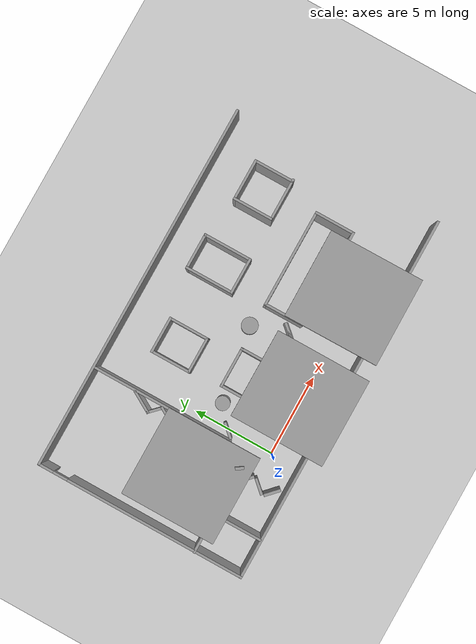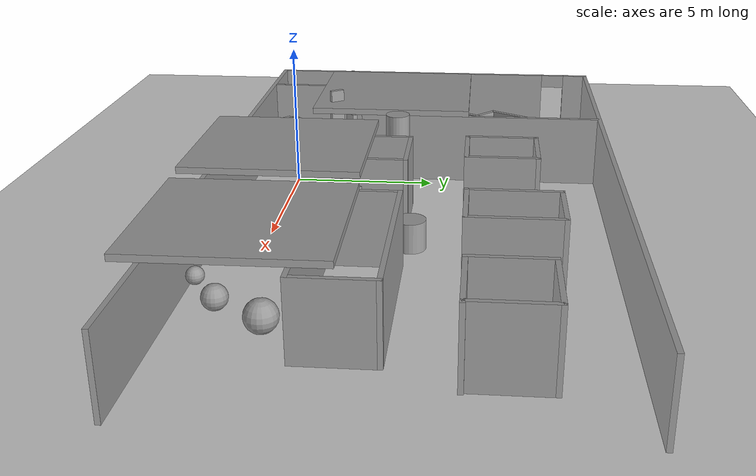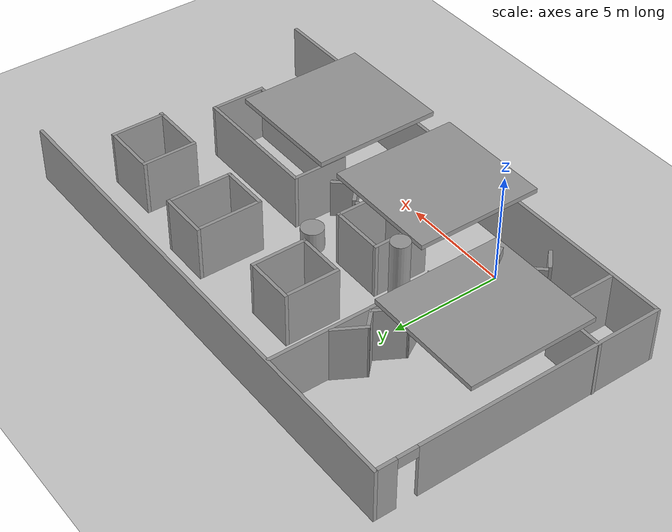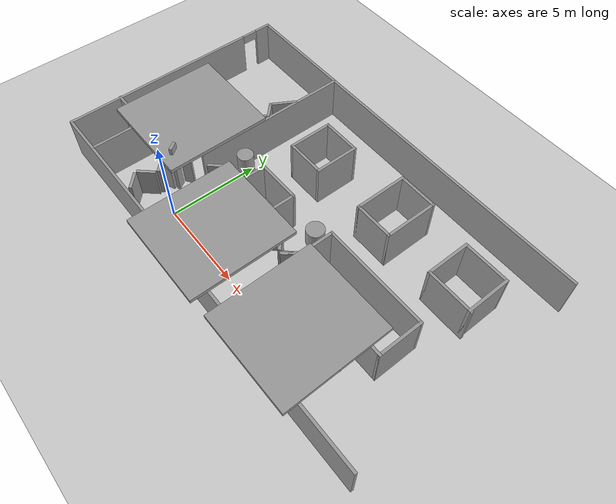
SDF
<sdf version="1.7">
 <world name="default">
  <light name="sun" type="directional">
   <pose>0 0 10 0 -0 0</pose>
   <diffuse>0.8 0.8 0.8 1</diffuse>
   <specular>0.2 0.2 0.2 1</specular>
   <attenuation>
    <range>1000</range>
    <constant>0.9</constant>
    <linear>0.01</linear>
    <quadratic>0.001</quadratic>
   </attenuation>
   <direction>-0.5 0.1 -0.9</direction>
   <spot><inner_angle>0</inner_angle><outer_angle>0</outer_angle><falloff>0</falloff></spot>
  </light>
  <model name="ground_plane">
   <static>1</static>
   <link name="link">
    <collision name="collision">
     <geometry><plane><normal>0 0 1</normal><size>100 100</size></plane></geometry>
     <surface>
      <contact><collide_bitmask>65535</collide_bitmask></contact>
      <friction><ode><mu>100</mu><mu2>50</mu2></ode></friction>
     </surface>
    </collision>
    <visual name="visual">
     <cast_shadows>0</cast_shadows>
     <geometry><plane><normal>0 0 1</normal><size>100 100</size></plane></geometry>
     <material>
      <script><uri>file://media/materials/scripts/gazebo.material</uri><name>Gazebo/Grey</name></script>
     </material>
    </visual>
   </link>
  </model>
  <gravity>0 0 -9.8</gravity>
  <magnetic_field>6e-06 2.3e-05 -4.2e-05</magnetic_field>
  <atmosphere type="adiabatic"/>
  <physics type="ode">
   <max_step_size>0.001</max_step_size>
   <real_time_factor>1</real_time_factor>
   <real_time_update_rate>1000</real_time_update_rate>
  </physics>
  <scene><ambient>0.4 0.4 0.4 1</ambient><background>0.7 0.7 0.7 1</background><shadows>1</shadows></scene>
  <spherical_coordinates>
   <surface_model>EARTH_WGS84</surface_model>
   <latitude_deg>0</latitude_deg>
   <longitude_deg>0</longitude_deg>
   <elevation>0</elevation>
   <heading_deg>0</heading_deg>
  </spherical_coordinates>
  <model name="office.world">
   <pose>4.59187 4.7119 0 0 -0 0</pose>
   <link name="Wall_11">
    <collision name="Wall_11_Collision">
     <geometry><box><size>22.75 0.15 2.5</size></box></geometry>
     <pose>0 0 1.25 0 -0 0</pose>
    </collision>
    <visual name="Wall_11_Visual">
     <pose>0 0 1.25 0 -0 0</pose>
     <geometry><box><size>22.75 0.15 2.5</size></box></geometry>
     <material>
      <script><uri>file://media/materials/scripts/gazebo.material</uri><name>Gazebo/Grey</name></script>
      <ambient>1 1 1 1</ambient>
     </material>
     <meta><layer>0</layer></meta>
    </visual>
    <pose>0.015161 6.425 0 0 -0 3.14159</pose>
   </link>
   <link name="Wall_15">
    <collision name="Wall_15_Collision">
     <geometry><box><size>8.75 0.15 2.5</size></box></geometry>
     <pose>0 0 1.25 0 -0 0</pose>
    </collision>
    <visual name="Wall_15_Visual">
     <pose>0 0 1.25 0 -0 0</pose>
     <geometry><box><size>8.75 0.15 2.5</size></box></geometry>
     <material>
      <script><uri>file://media/materials/scripts/gazebo.material</uri><name>Gazebo/Grey</name></script>
      <ambient>1 1 1 1</ambient>
     </material>
     <meta><layer>0</layer></meta>
    </visual>
    <pose>-5.08854 2.04563 0 0 -0 -1.5708</pose>
   </link>
   <link name="Wall_17">
    <collision name="Wall_17_Collision">
     <geometry><box><size>2.5 0.15 2.5</size></box></geometry>
     <pose>0 0 1.25 0 -0 0</pose>
    </collision>
    <visual name="Wall_17_Visual">
     <pose>0 0 1.25 0 -0 0</pose>
     <geometry><box><size>2.5 0.15 2.5</size></box></geometry>
     <material>
      <script><uri>file://media/materials/scripts/gazebo.material</uri><name>Gazebo/Grey</name></script>
      <ambient>1 1 1 1</ambient>
     </material>
     <meta><layer>0</layer></meta>
    </visual>
    <pose>-2.75356 2.83565 0 0 -0 -1.5708</pose>
   </link>
   <link name="Wall_18">
    <collision name="Wall_18_Collision">
     <geometry><box><size>2.25 0.15 2.5</size></box></geometry>
     <pose>0 0 1.25 0 -0 0</pose>
    </collision>
    <visual name="Wall_18_Visual">
     <pose>0 0 1.25 0 -0 0</pose>
     <geometry><box><size>2.25 0.15 2.5</size></box></geometry>
     <material>
      <script><uri>file://media/materials/scripts/gazebo.material</uri><name>Gazebo/Grey</name></script>
      <ambient>1 1 1 1</ambient>
     </material>
     <meta><layer>0</layer></meta>
    </visual>
    <pose>-1.70356 1.66065 0 0 -0 0</pose>
   </link>
   <link name="Wall_19">
    <collision name="Wall_19_Collision">
     <geometry><box><size>2.5 0.15 2.5</size></box></geometry>
     <pose>0 0 1.25 0 -0 0</pose>
    </collision>
    <visual name="Wall_19_Visual">
     <pose>0 0 1.25 0 -0 0</pose>
     <geometry><box><size>2.5 0.15 2.5</size></box></geometry>
     <material>
      <script><uri>file://media/materials/scripts/gazebo.material</uri><name>Gazebo/Grey</name></script>
      <ambient>1 1 1 1</ambient>
     </material>
     <meta><layer>0</layer></meta>
    </visual>
    <pose>-0.653558 2.83565 0 0 -0 1.5708</pose>
   </link>
   <link name="Wall_20">
    <collision name="Wall_20_Collision">
     <geometry><box><size>2.25 0.15 2.5</size></box></geometry>
     <pose>0 0 1.25 0 -0 0</pose>
    </collision>
    <visual name="Wall_20_Visual">
     <pose>0 0 1.25 0 -0 0</pose>
     <geometry><box><size>2.25 0.15 2.5</size></box></geometry>
     <material>
      <script><uri>file://media/materials/scripts/gazebo.material</uri><name>Gazebo/Grey</name></script>
      <ambient>1 1 1 1</ambient>
     </material>
     <meta><layer>0</layer></meta>
    </visual>
    <pose>-1.70356 4.01065 0 0 -0 3.14159</pose>
   </link>
   <link name="Wall_22">
    <collision name="Wall_22_Collision">
     <geometry><box><size>3 0.15 2.5</size></box></geometry>
     <pose>0 0 1.25 0 -0 0</pose>
    </collision>
    <visual name="Wall_22_Visual">
     <pose>0 0 1.25 0 -0 0</pose>
     <geometry><box><size>3 0.15 2.5</size></box></geometry>
     <material>
      <script><uri>file://media/materials/scripts/gazebo.material</uri><name>Gazebo/Grey</name></script>
      <ambient>1 1 1 1</ambient>
     </material>
     <meta><layer>0</layer></meta>
    </visual>
    <pose>2.27019 3.1611 0 0 -0 -1.5708</pose>
   </link>
   <link name="Wall_23">
    <collision name="Wall_23_Collision">
     <geometry><box><size>2.25 0.15 2.5</size></box></geometry>
     <pose>0 0 1.25 0 -0 0</pose>
    </collision>
    <visual name="Wall_23_Visual">
     <pose>0 0 1.25 0 -0 0</pose>
     <geometry><box><size>2.25 0.15 2.5</size></box></geometry>
     <material>
      <script><uri>file://media/materials/scripts/gazebo.material</uri><name>Gazebo/Grey</name></script>
      <ambient>1 1 1 1</ambient>
     </material>
     <meta><layer>0</layer></meta>
    </visual>
    <pose>3.32019 1.7361 0 0 -0 0</pose>
   </link>
   <link name="Wall_24">
    <collision name="Wall_24_Collision">
     <geometry><box><size>3 0.15 2.5</size></box></geometry>
     <pose>0 0 1.25 0 -0 0</pose>
    </collision>
    <visual name="Wall_24_Visual">
     <pose>0 0 1.25 0 -0 0</pose>
     <geometry><box><size>3 0.15 2.5</size></box></geometry>
     <material>
      <script><uri>file://media/materials/scripts/gazebo.material</uri><name>Gazebo/Grey</name></script>
      <ambient>1 1 1 1</ambient>
     </material>
     <meta><layer>0</layer></meta>
    </visual>
    <pose>4.37019 3.1611 0 0 -0 1.5708</pose>
   </link>
   <link name="Wall_25">
    <collision name="Wall_25_Collision">
     <geometry><box><size>2.25 0.15 2.5</size></box></geometry>
     <pose>0 0 1.25 0 -0 0</pose>
    </collision>
    <visual name="Wall_25_Visual">
     <pose>0 0 1.25 0 -0 0</pose>
     <geometry><box><size>2.25 0.15 2.5</size></box></geometry>
     <material>
      <script><uri>file://media/materials/scripts/gazebo.material</uri><name>Gazebo/Grey</name></script>
      <ambient>1 1 1 1</ambient>
     </material>
     <meta><layer>0</layer></meta>
    </visual>
    <pose>3.32019 4.5861 0 0 -0 3.14159</pose>
   </link>
   <link name="Wall_27">
    <collision name="Wall_27_Collision">
     <geometry><box><size>2.5 0.15 2.5</size></box></geometry>
     <pose>0 0 1.25 0 -0 0</pose>
    </collision>
    <visual name="Wall_27_Visual">
     <pose>0 0 1.25 0 -0 0</pose>
     <geometry><box><size>2.5 0.15 2.5</size></box></geometry>
     <material>
      <script><uri>file://media/materials/scripts/gazebo.material</uri><name>Gazebo/Grey</name></script>
      <ambient>1 1 1 1</ambient>
     </material>
     <meta><layer>0</layer></meta>
    </visual>
    <pose>6.94016 2.97716 0 0 -0 -1.5708</pose>
   </link>
   <link name="Wall_28">
    <collision name="Wall_28_Collision">
     <geometry><box><size>2.64151 0.15 2.5</size></box></geometry>
     <pose>0 0 1.25 0 -0 0</pose>
    </collision>
    <visual name="Wall_28_Visual">
     <pose>0 0 1.25 0 -0 0</pose>
     <geometry><box><size>2.64151 0.15 2.5</size></box></geometry>
     <material>
      <script><uri>file://media/materials/scripts/gazebo.material</uri><name>Gazebo/Grey</name></script>
      <ambient>1 1 1 1</ambient>
     </material>
     <meta><layer>0</layer></meta>
    </visual>
    <pose>8.18592 1.80216 0 0 -0 0</pose>
   </link>
   <link name="Wall_29">
    <collision name="Wall_29_Collision">
     <geometry><box><size>2.5 0.15 2.5</size></box></geometry>
     <pose>0 0 1.25 0 -0 0</pose>
    </collision>
    <visual name="Wall_29_Visual">
     <pose>0 0 1.25 0 -0 0</pose>
     <geometry><box><size>2.5 0.15 2.5</size></box></geometry>
     <material>
      <script><uri>file://media/materials/scripts/gazebo.material</uri><name>Gazebo/Grey</name></script>
      <ambient>1 1 1 1</ambient>
     </material>
     <meta><layer>0</layer></meta>
    </visual>
    <pose>9.36092 2.97716 0 0 -0 1.5708</pose>
   </link>
   <link name="Wall_30">
    <collision name="Wall_30_Collision">
     <geometry><box><size>2.57076 0.15 2.5</size></box></geometry>
     <pose>0 0 1.25 0 -0 0</pose>
    </collision>
    <visual name="Wall_30_Visual">
     <pose>0 0 1.25 0 -0 0</pose>
     <geometry><box><size>2.57076 0.15 2.5</size></box></geometry>
     <material>
      <script><uri>file://media/materials/scripts/gazebo.material</uri><name>Gazebo/Grey</name></script>
      <ambient>1 1 1 1</ambient>
     </material>
     <meta><layer>0</layer></meta>
    </visual>
    <pose>8.15054 4.15216 0 0 -0 3.14159</pose>
   </link>
   <link name="Wall_32">
    <collision name="Wall_32_Collision">
     <geometry><box><size>2.5 0.15 2.5</size></box></geometry>
     <pose>0 0 1.25 0 -0 0</pose>
    </collision>
    <visual name="Wall_32_Visual">
     <pose>0 0 1.25 0 -0 0</pose>
     <geometry><box><size>2.5 0.15 2.5</size></box></geometry>
     <material>
      <script><uri>file://media/materials/scripts/gazebo.material</uri><name>Gazebo/Grey</name></script>
      <ambient>1 1 1 1</ambient>
     </material>
     <meta><layer>0</layer></meta>
    </visual>
    <pose>-2.54129 -1.48053 0 0 -0 -1.5708</pose>
   </link>
   <link name="Wall_33">
    <collision name="Wall_33_Collision">
     <geometry><box><size>2.5 0.15 2.5</size></box></geometry>
     <pose>0 0 1.25 0 -0 0</pose>
    </collision>
    <visual name="Wall_33_Visual">
     <pose>0 0 1.25 0 -0 0</pose>
     <geometry><box><size>2.5 0.15 2.5</size></box></geometry>
     <material>
      <script><uri>file://media/materials/scripts/gazebo.material</uri><name>Gazebo/Grey</name></script>
      <ambient>1 1 1 1</ambient>
     </material>
     <meta><layer>0</layer></meta>
    </visual>
    <pose>-1.36629 -2.65553 0 0 -0 0</pose>
   </link>
   <link name="Wall_34">
    <collision name="Wall_34_Collision">
     <geometry><box><size>2.5 0.15 2.5</size></box></geometry>
     <pose>0 0 1.25 0 -0 0</pose>
    </collision>
    <visual name="Wall_34_Visual">
     <pose>0 0 1.25 0 -0 0</pose>
     <geometry><box><size>2.5 0.15 2.5</size></box></geometry>
     <material>
      <script><uri>file://media/materials/scripts/gazebo.material</uri><name>Gazebo/Grey</name></script>
      <ambient>1 1 1 1</ambient>
     </material>
     <meta><layer>0</layer></meta>
    </visual>
    <pose>-0.191286 -1.48053 0 0 -0 1.5708</pose>
   </link>
   <link name="Wall_35">
    <collision name="Wall_35_Collision">
     <geometry><box><size>2.5 0.15 2.5</size></box></geometry>
     <pose>0 0 1.25 0 -0 0</pose>
    </collision>
    <visual name="Wall_35_Visual">
     <pose>0 0 1.25 0 -0 0</pose>
     <geometry><box><size>2.5 0.15 2.5</size></box></geometry>
     <material>
      <script><uri>file://media/materials/scripts/gazebo.material</uri><name>Gazebo/Grey</name></script>
      <ambient>1 1 1 1</ambient>
     </material>
     <meta><layer>0</layer></meta>
    </visual>
    <pose>-1.36629 -0.305535 0 0 -0 3.14159</pose>
   </link>
   <link name="Wall_37">
    <collision name="Wall_37_Collision">
     <geometry><box><size>2.5 0.15 2.5</size></box></geometry>
     <pose>0 0 1.25 0 -0 0</pose>
    </collision>
    <visual name="Wall_37_Visual">
     <pose>0 0 1.25 0 -0 0</pose>
     <geometry><box><size>2.5 0.15 2.5</size></box></geometry>
     <material>
      <script><uri>file://media/materials/scripts/gazebo.material</uri><name>Gazebo/Grey</name></script>
      <ambient>1 1 1 1</ambient>
     </material>
     <meta><layer>0</layer></meta>
    </visual>
    <pose>2.62398 -1.40978 0 0 -0 -1.5708</pose>
   </link>
   <link name="Wall_38">
    <collision name="Wall_38_Collision">
     <geometry><box><size>6 0.15 2.5</size></box></geometry>
     <pose>0 0 1.25 0 -0 0</pose>
    </collision>
    <visual name="Wall_38_Visual">
     <pose>0 0 1.25 0 -0 0</pose>
     <geometry><box><size>6 0.15 2.5</size></box></geometry>
     <material>
      <script><uri>file://media/materials/scripts/gazebo.material</uri><name>Gazebo/Grey</name></script>
      <ambient>1 1 1 1</ambient>
     </material>
     <meta><layer>0</layer></meta>
    </visual>
    <pose>5.54898 -2.58478 0 0 -0 0</pose>
   </link>
   <link name="Wall_39">
    <collision name="Wall_39_Collision">
     <geometry><box><size>2.5 0.15 2.5</size></box></geometry>
     <pose>0 0 1.25 0 -0 0</pose>
    </collision>
    <visual name="Wall_39_Visual">
     <pose>0 0 1.25 0 -0 0</pose>
     <geometry><box><size>2.5 0.15 2.5</size></box></geometry>
     <material>
      <script><uri>file://media/materials/scripts/gazebo.material</uri><name>Gazebo/Grey</name></script>
      <ambient>1 1 1 1</ambient>
     </material>
     <meta><layer>0</layer></meta>
    </visual>
    <pose>8.47398 -1.40978 0 0 -0 1.5708</pose>
   </link>
   <link name="Wall_40">
    <collision name="Wall_40_Collision">
     <geometry><box><size>6 0.15 2.5</size></box></geometry>
     <pose>0 0 1.25 0 -0 0</pose>
    </collision>
    <visual name="Wall_40_Visual">
     <pose>0 0 1.25 0 -0 0</pose>
     <geometry><box><size>6 0.15 2.5</size></box></geometry>
     <material>
      <script><uri>file://media/materials/scripts/gazebo.material</uri><name>Gazebo/Grey</name></script>
      <ambient>1 1 1 1</ambient>
     </material>
     <meta><layer>0</layer></meta>
    </visual>
    <pose>5.54898 -0.234777 0 0 -0 3.14159</pose>
   </link>
   <link name="Wall_42">
    <collision name="Wall_42_Collision">
     <geometry><box><size>1.5 0.15 2.5</size></box></geometry>
     <pose>0 0 1.25 0 -0 0</pose>
    </collision>
    <visual name="Wall_42_Visual">
     <pose>0 0 1.25 0 -0 0</pose>
     <geometry><box><size>1.5 0.15 2.5</size></box></geometry>
     <material>
      <script><uri>file://media/materials/scripts/gazebo.material</uri><name>Gazebo/Grey</name></script>
      <ambient>1 1 1 1</ambient>
     </material>
     <meta><layer>0</layer></meta>
    </visual>
    <pose>-5.4968 3.14305 0 0 -0 -2.0944</pose>
   </link>
   <link name="Wall_43">
    <collision name="Wall_43_Collision">
     <geometry><box><size>1 0.15 2.5</size></box></geometry>
     <pose>0 0 1.25 0 -0 0</pose>
    </collision>
    <visual name="Wall_43_Visual">
     <pose>0 0 1.25 0 -0 0</pose>
     <geometry><box><size>1 0.15 2.5</size></box></geometry>
     <material>
      <script><uri>file://media/materials/scripts/gazebo.material</uri><name>Gazebo/Grey</name></script>
      <ambient>1 1 1 1</ambient>
     </material>
     <meta><layer>0</layer></meta>
    </visual>
    <pose>-5.53378 2.25796 0 0 -0 -0.785398</pose>
   </link>
   <link name="Wall_44">
    <collision name="Wall_44_Collision">
     <geometry><box><size>1.5 0.15 2.5</size></box></geometry>
     <pose>0 0 1.25 0 -0 0</pose>
    </collision>
    <visual name="Wall_44_Visual">
     <pose>0 0 1.25 0 -0 0</pose>
     <geometry><box><size>1.5 0.15 2.5</size></box></geometry>
     <material>
      <script><uri>file://media/materials/scripts/gazebo.material</uri><name>Gazebo/Grey</name></script>
      <ambient>1 1 1 1</ambient>
     </material>
     <meta><layer>0</layer></meta>
    </visual>
    <pose>-5.57076 1.37288 0 0 -0 -2.0944</pose>
   </link>
   <link name="Wall_45">
    <collision name="Wall_45_Collision">
     <geometry><box><size>1.5 0.15 2.5</size></box></geometry>
     <pose>0 0 1.25 0 -0 0</pose>
    </collision>
    <visual name="Wall_45_Visual">
     <pose>0 0 1.25 0 -0 0</pose>
     <geometry><box><size>1.5 0.15 2.5</size></box></geometry>
     <material>
      <script><uri>file://media/materials/scripts/gazebo.material</uri><name>Gazebo/Grey</name></script>
      <ambient>1 1 1 1</ambient>
     </material>
     <meta><layer>0</layer></meta>
    </visual>
    <pose>-5.57076 0.203741 0 0 -0 -1.0472</pose>
   </link>
   <link name="Wall_47">
    <collision name="Wall_47_Collision">
     <geometry><box><size>2.5 0.15 2.5</size></box></geometry>
     <pose>0 0 1.25 0 -0 0</pose>
    </collision>
    <visual name="Wall_47_Visual">
     <pose>0 0 1.25 0 -0 0</pose>
     <geometry><box><size>2.5 0.15 2.5</size></box></geometry>
     <material>
      <script><uri>file://media/materials/scripts/gazebo.material</uri><name>Gazebo/Grey</name></script>
      <ambient>1 1 1 1</ambient>
     </material>
     <meta><layer>0</layer></meta>
    </visual>
    <pose>-10.1402 -3.4896 0 0 -0 0</pose>
   </link>
   <link name="Wall_48">
    <collision name="Wall_48_Collision">
     <geometry><box><size>3 0.15 2.5</size></box></geometry>
     <pose>0 0 1.25 0 -0 0</pose>
    </collision>
    <visual name="Wall_48_Visual">
     <pose>0 0 1.25 0 -0 0</pose>
     <geometry><box><size>3 0.15 2.5</size></box></geometry>
     <material>
      <script><uri>file://media/materials/scripts/gazebo.material</uri><name>Gazebo/Grey</name></script>
      <ambient>1 1 1 1</ambient>
     </material>
     <meta><layer>0</layer></meta>
    </visual>
    <pose>-8.96516 -4.9146 0 0 -0 -1.5708</pose>
   </link>
   <link name="Wall_8">
    <pose>-11.2848 -0 0 0 -0 -1.5708</pose>
    <visual name="Wall_8_Visual_0">
     <pose>-6.011 0 1.25 0 -0 0</pose>
     <geometry><box><size>0.977998 0.15 2.5</size></box></geometry>
     <material>
      <script><uri>file://media/materials/scripts/gazebo.material</uri><name>Gazebo/Grey</name></script>
      <ambient>1 1 1 1</ambient>
     </material>
     <meta><layer>0</layer></meta>
    </visual>
    <collision name="Wall_8_Collision_0">
     <geometry><box><size>0.977998 0.15 2.5</size></box></geometry>
     <pose>-6.011 0 1.25 0 -0 0</pose>
    </collision>
    <visual name="Wall_8_Visual_1">
     <pose>0.938999 0 1.25 0 -0 0</pose>
     <geometry><box><size>11.122 0.15 2.5</size></box></geometry>
     <material>
      <script><uri>file://media/materials/scripts/gazebo.material</uri><name>Gazebo/Grey</name></script>
      <ambient>1 1 1 1</ambient>
     </material>
     <meta><layer>0</layer></meta>
    </visual>
    <collision name="Wall_8_Collision_1">
     <geometry><box><size>11.122 0.15 2.5</size></box></geometry>
     <pose>0.938999 0 1.25 0 -0 0</pose>
    </collision>
    <visual name="Wall_8_Visual_2">
     <pose>-5.072 0 2.25 0 -0 0</pose>
     <geometry><box><size>0.9 0.15 0.5</size></box></geometry>
     <material>
      <script><uri>file://media/materials/scripts/gazebo.material</uri><name>Gazebo/Grey</name></script>
      <ambient>1 1 1 1</ambient>
     </material>
     <meta><layer>0</layer></meta>
    </visual>
    <collision name="Wall_8_Collision_2">
     <geometry><box><size>0.9 0.15 0.5</size></box></geometry>
     <pose>-5.072 0 2.25 0 -0 0</pose>
    </collision>
   </link>
   <link name="Wall_9">
    <collision name="Wall_9_Collision">
     <geometry><box><size>22.75 0.15 2.5</size></box></geometry>
     <pose>0 0 1.25 0 -0 0</pose>
    </collision>
    <visual name="Wall_9_Visual">
     <pose>0 0 1.25 0 -0 0</pose>
     <geometry><box><size>22.75 0.15 2.5</size></box></geometry>
     <material>
      <script><uri>file://media/materials/scripts/gazebo.material</uri><name>Gazebo/Grey</name></script>
      <ambient>1 1 1 1</ambient>
     </material>
     <meta><layer>0</layer></meta>
    </visual>
    <pose>0.015161 -6.425 0 0 -0 0</pose>
   </link>
   <static>1</static>
  </model>
  <model name="unit_cylinder_0">
   <pose>5.80131 4.676 0.499997 3e-06 1e-06 -0</pose>
   <link name="link">
    <inertial>
     <mass>1</mass>
     <inertia><ixx>0.145833</ixx><ixy>0</ixy><ixz>0</ixz><iyy>0.145833</iyy><iyz>0</iyz><izz>0.125</izz></inertia>
    </inertial>
    <collision name="collision">
     <geometry><cylinder><radius>0.5</radius><length>1</length></cylinder></geometry>
    </collision>
    <visual name="visual">
     <geometry><cylinder><radius>0.5</radius><length>1</length></cylinder></geometry>
     <material>
      <script><name>Gazebo/Grey</name><uri>file://media/materials/scripts/gazebo.material</uri></script>
     </material>
    </visual>
   </link>
  </model>
  <model name="unit_sphere">
   <pose>11.515 1.10677 0.5 0 -0 0</pose>
   <link name="link">
    <inertial>
     <mass>1</mass>
     <inertia><ixx>0.1</ixx><ixy>0</ixy><ixz>0</ixz><iyy>0.1</iyy><iyz>0</iyz><izz>0.1</izz></inertia>
    </inertial>
    <collision name="collision"><geometry><sphere><radius>0.5</radius></sphere></geometry></collision>
    <visual name="visual">
     <geometry><sphere><radius>0.5</radius></sphere></geometry>
     <material>
      <script><name>Gazebo/Grey</name><uri>file://media/materials/scripts/gazebo.material</uri></script>
     </material>
    </visual>
   </link>
  </model>
  <model name="unit_cylinder">
   <link name="link">
    <inertial>
     <mass>2.12958</mass>
     <inertia><ixx>1.74509</ixx><ixy>0</ixy><ixz>0</ixz><iyy>1.74509</iyy><iyz>0</iyz><izz>0.185715</izz></inertia>
    </inertial>
    <pose>0.182221 0.988908 0.5707 0 -0 0</pose>
    <visual name="visual">
     <geometry><cylinder><radius>0.417629</radius><length>3.05125</length></cylinder></geometry>
     <material>
      <script><name>Gazebo/Grey</name><uri>file://media/materials/scripts/gazebo.material</uri></script>
      <shader type="pixel"/>
     </material>
    </visual>
    <collision name="collision">
     <geometry><cylinder><radius>0.417629</radius><length>3.05125</length></cylinder></geometry>
     <surface>
      <friction>
       <ode><mu>1</mu><mu2>1</mu2><fdir1>0 0 0</fdir1><slip1>0</slip1><slip2>0</slip2></ode>
       <torsional>
        <coefficient>1</coefficient>
        <patch_radius>0</patch_radius>
        <surface_radius>0</surface_radius>
        <use_patch_radius>1</use_patch_radius>
        <ode><slip>0</slip></ode>
       </torsional>
      </friction>
      <bounce><restitution_coefficient>0</restitution_coefficient><threshold>1e+06</threshold></bounce>
      <contact>
       <collide_without_contact>0</collide_without_contact>
       <collide_without_contact_bitmask>1</collide_without_contact_bitmask>
       <collide_bitmask>1</collide_bitmask>
       <ode>
        <soft_cfm>0</soft_cfm>
        <soft_erp>0.2</soft_erp>
        <kp>1e+13</kp>
        <kd>1</kd>
        <max_vel>0.01</max_vel>
        <min_depth>0</min_depth>
       </ode>
       <bullet>
        <split_impulse>1</split_impulse>
        <split_impulse_penetration_threshold>-0.01</split_impulse_penetration_threshold>
        <soft_cfm>0</soft_cfm>
        <soft_erp>0.2</soft_erp>
        <kp>1e+13</kp>
        <kd>1</kd>
       </bullet>
      </contact>
     </surface>
    </collision>
   </link>
   <link name="link_1_clone">
    <inertial>
     <mass>0.284362</mass>
     <inertia>
      <ixx>0.0934565</ixx>
      <ixy>0</ixy>
      <ixz>0</ixz>
      <iyy>0.0704112</iyy>
      <iyz>0</iyz>
      <izz>0.0243483</izz>
     </inertia>
    </inertial>
    <pose>3.8361 -0.261391 1e-05 0 -1e-05 -0.722721</pose>
    <visual name="visual">
     <geometry><box><size>0.165809 1 1.71576</size></box></geometry>
     <material>
      <lighting>1</lighting>
      <script><uri>file://media/materials/scripts/gazebo.material</uri><name>Gazebo/Grey</name></script>
      <shader type="pixel"/>
     </material>
    </visual>
    <collision name="collision">
     <geometry><box><size>0.165809 1 1.71576</size></box></geometry>
     <surface>
      <friction>
       <ode><mu>1</mu><mu2>1</mu2><fdir1>0 0 0</fdir1><slip1>0</slip1><slip2>0</slip2></ode>
       <torsional>
        <coefficient>1</coefficient>
        <patch_radius>0</patch_radius>
        <surface_radius>0</surface_radius>
        <use_patch_radius>1</use_patch_radius>
        <ode><slip>0</slip></ode>
       </torsional>
      </friction>
      <bounce><restitution_coefficient>0</restitution_coefficient><threshold>1e+06</threshold></bounce>
      <contact>
       <collide_without_contact>0</collide_without_contact>
       <collide_without_contact_bitmask>1</collide_without_contact_bitmask>
       <collide_bitmask>1</collide_bitmask>
       <ode>
        <soft_cfm>0</soft_cfm>
        <soft_erp>0.2</soft_erp>
        <kp>1e+13</kp>
        <kd>1</kd>
        <max_vel>0.01</max_vel>
        <min_depth>0</min_depth>
       </ode>
       <bullet>
        <split_impulse>1</split_impulse>
        <split_impulse_penetration_threshold>-0.01</split_impulse_penetration_threshold>
        <soft_cfm>0</soft_cfm>
        <soft_erp>0.2</soft_erp>
        <kp>1e+13</kp>
        <kd>1</kd>
       </bullet>
      </contact>
     </surface>
    </collision>
   </link>
   <link name="link_1_clone_clone">
    <inertial>
     <mass>0.284362</mass>
     <inertia>
      <ixx>0.0934565</ixx>
      <ixy>0</ixy>
      <ixz>0</ixz>
      <iyy>0.0704112</iyy>
      <iyz>0</iyz>
      <izz>0.0243483</izz>
     </inertia>
    </inertial>
    <pose>4.66829 -0.290195 2.8e-05 -1.5e-05 -1e-06 0.806998</pose>
    <visual name="visual">
     <geometry><box><size>0.165809 1 1.71576</size></box></geometry>
     <material>
      <lighting>1</lighting>
      <script><uri>file://media/materials/scripts/gazebo.material</uri><name>Gazebo/Grey</name></script>
      <shader type="pixel"/>
     </material>
    </visual>
    <collision name="collision">
     <geometry><box><size>0.165809 1 1.71576</size></box></geometry>
     <surface>
      <friction>
       <ode><mu>1</mu><mu2>1</mu2><fdir1>0 0 0</fdir1><slip1>0</slip1><slip2>0</slip2></ode>
       <torsional>
        <coefficient>1</coefficient>
        <patch_radius>0</patch_radius>
        <surface_radius>0</surface_radius>
        <use_patch_radius>1</use_patch_radius>
        <ode><slip>0</slip></ode>
       </torsional>
      </friction>
      <bounce><restitution_coefficient>0</restitution_coefficient><threshold>1e+06</threshold></bounce>
      <contact>
       <collide_without_contact>0</collide_without_contact>
       <collide_without_contact_bitmask>1</collide_without_contact_bitmask>
       <collide_bitmask>1</collide_bitmask>
       <ode>
        <soft_cfm>0</soft_cfm>
        <soft_erp>0.2</soft_erp>
        <kp>1e+13</kp>
        <kd>1</kd>
        <max_vel>0.01</max_vel>
        <min_depth>0</min_depth>
       </ode>
       <bullet>
        <split_impulse>1</split_impulse>
        <split_impulse_penetration_threshold>-0.01</split_impulse_penetration_threshold>
        <soft_cfm>0</soft_cfm>
        <soft_erp>0.2</soft_erp>
        <kp>1e+13</kp>
        <kd>1</kd>
       </bullet>
      </contact>
     </surface>
    </collision>
   </link>
   <link name="link_1_clone_clone_0">
    <inertial>
     <mass>0.284362</mass>
     <inertia>
      <ixx>0.0934565</ixx>
      <ixy>0</ixy>
      <ixz>0</ixz>
      <iyy>0.0704112</iyy>
      <iyz>0</iyz>
      <izz>0.0243483</izz>
     </inertia>
    </inertial>
    <pose>5.50905 -0.333409 3.1e-05 0 -1.5e-05 -0.722721</pose>
    <visual name="visual">
     <geometry><box><size>0.165809 1 1.71576</size></box></geometry>
     <material>
      <lighting>1</lighting>
      <script><uri>file://media/materials/scripts/gazebo.material</uri><name>Gazebo/Grey</name></script>
      <shader type="pixel"/>
     </material>
    </visual>
    <collision name="collision">
     <geometry><box><size>0.165809 1 1.71576</size></box></geometry>
     <surface>
      <friction>
       <ode><mu>1</mu><mu2>1</mu2><fdir1>0 0 0</fdir1><slip1>0</slip1><slip2>0</slip2></ode>
       <torsional>
        <coefficient>1</coefficient>
        <patch_radius>0</patch_radius>
        <surface_radius>0</surface_radius>
        <use_patch_radius>1</use_patch_radius>
        <ode><slip>0</slip></ode>
       </torsional>
      </friction>
      <bounce><restitution_coefficient>0</restitution_coefficient><threshold>1e+06</threshold></bounce>
      <contact>
       <collide_without_contact>0</collide_without_contact>
       <collide_without_contact_bitmask>1</collide_without_contact_bitmask>
       <collide_bitmask>1</collide_bitmask>
       <ode>
        <soft_cfm>0</soft_cfm>
        <soft_erp>0.2</soft_erp>
        <kp>1e+13</kp>
        <kd>1</kd>
        <max_vel>0.01</max_vel>
        <min_depth>0</min_depth>
       </ode>
       <bullet>
        <split_impulse>1</split_impulse>
        <split_impulse_penetration_threshold>-0.01</split_impulse_penetration_threshold>
        <soft_cfm>0</soft_cfm>
        <soft_erp>0.2</soft_erp>
        <kp>1e+13</kp>
        <kd>1</kd>
       </bullet>
      </contact>
     </surface>
    </collision>
   </link>
   <link name="link_1_clone_clone_1">
    <inertial>
     <mass>0.284362</mass>
     <inertia>
      <ixx>0.0934565</ixx>
      <ixy>0</ixy>
      <ixz>0</ixz>
      <iyy>0.0704112</iyy>
      <iyz>0</iyz>
      <izz>0.0243483</izz>
     </inertia>
    </inertial>
    <pose>5.50877 -0.269126 3.1e-05 0 -1.5e-05 -0.722721</pose>
    <visual name="visual">
     <geometry><box><size>0.165809 1 1.71576</size></box></geometry>
     <material>
      <lighting>1</lighting>
      <script><uri>file://media/materials/scripts/gazebo.material</uri><name>Gazebo/Grey</name></script>
      <shader type="pixel"/>
     </material>
    </visual>
    <collision name="collision">
     <geometry><box><size>0.165809 1 1.71576</size></box></geometry>
     <surface>
      <friction>
       <ode><mu>1</mu><mu2>1</mu2><fdir1>0 0 0</fdir1><slip1>0</slip1><slip2>0</slip2></ode>
       <torsional>
        <coefficient>1</coefficient>
        <patch_radius>0</patch_radius>
        <surface_radius>0</surface_radius>
        <use_patch_radius>1</use_patch_radius>
        <ode><slip>0</slip></ode>
       </torsional>
      </friction>
      <bounce><restitution_coefficient>0</restitution_coefficient><threshold>1e+06</threshold></bounce>
      <contact>
       <collide_without_contact>0</collide_without_contact>
       <collide_without_contact_bitmask>1</collide_without_contact_bitmask>
       <collide_bitmask>1</collide_bitmask>
       <ode>
        <soft_cfm>0</soft_cfm>
        <soft_erp>0.2</soft_erp>
        <kp>1e+13</kp>
        <kd>1</kd>
        <max_vel>0.01</max_vel>
        <min_depth>0</min_depth>
       </ode>
       <bullet>
        <split_impulse>1</split_impulse>
        <split_impulse_penetration_threshold>-0.01</split_impulse_penetration_threshold>
        <soft_cfm>0</soft_cfm>
        <soft_erp>0.2</soft_erp>
        <kp>1e+13</kp>
        <kd>1</kd>
       </bullet>
      </contact>
     </surface>
    </collision>
   </link>
   <link name="link_1_clone_clone_2">
    <inertial>
     <mass>0.284362</mass>
     <inertia>
      <ixx>0.0934565</ixx>
      <ixy>0</ixy>
      <ixz>0</ixz>
      <iyy>0.0704112</iyy>
      <iyz>0</iyz>
      <izz>0.0243483</izz>
     </inertia>
    </inertial>
    <pose>-1.05813 -0.017326 6e-06 0 -1.5e-05 -0.722721</pose>
    <visual name="visual">
     <geometry><box><size>0.165809 1 1.71576</size></box></geometry>
     <material>
      <lighting>1</lighting>
      <script><uri>file://media/materials/scripts/gazebo.material</uri><name>Gazebo/Grey</name></script>
      <shader type="pixel"/>
     </material>
    </visual>
    <collision name="collision">
     <geometry><box><size>0.165809 1 1.71576</size></box></geometry>
     <surface>
      <friction>
       <ode><mu>1</mu><mu2>1</mu2><fdir1>0 0 0</fdir1><slip1>0</slip1><slip2>0</slip2></ode>
       <torsional>
        <coefficient>1</coefficient>
        <patch_radius>0</patch_radius>
        <surface_radius>0</surface_radius>
        <use_patch_radius>1</use_patch_radius>
        <ode><slip>0</slip></ode>
       </torsional>
      </friction>
      <bounce><restitution_coefficient>0</restitution_coefficient><threshold>1e+06</threshold></bounce>
      <contact>
       <collide_without_contact>0</collide_without_contact>
       <collide_without_contact_bitmask>1</collide_without_contact_bitmask>
       <collide_bitmask>1</collide_bitmask>
       <ode>
        <soft_cfm>0</soft_cfm>
        <soft_erp>0.2</soft_erp>
        <kp>1e+13</kp>
        <kd>1</kd>
        <max_vel>0.01</max_vel>
        <min_depth>0</min_depth>
       </ode>
       <bullet>
        <split_impulse>1</split_impulse>
        <split_impulse_penetration_threshold>-0.01</split_impulse_penetration_threshold>
        <soft_cfm>0</soft_cfm>
        <soft_erp>0.2</soft_erp>
        <kp>1e+13</kp>
        <kd>1</kd>
       </bullet>
      </contact>
     </surface>
    </collision>
   </link>
   <link name="link_1_clone_clone_3">
    <inertial>
     <mass>0.284362</mass>
     <inertia>
      <ixx>0.0934565</ixx>
      <ixy>0</ixy>
      <ixz>0</ixz>
      <iyy>0.0704112</iyy>
      <iyz>0</iyz>
      <izz>0.0243483</izz>
     </inertia>
    </inertial>
    <pose>-2.88537 -3.89508 1.2e-05 -1.5e-05 -1e-06 0.811505</pose>
    <visual name="visual">
     <geometry><box><size>0.165809 1 1.71576</size></box></geometry>
     <material>
      <lighting>1</lighting>
      <script><uri>file://media/materials/scripts/gazebo.material</uri><name>Gazebo/Grey</name></script>
      <shader type="pixel"/>
     </material>
    </visual>
    <collision name="collision">
     <geometry><box><size>0.165809 1 1.71576</size></box></geometry>
     <surface>
      <friction>
       <ode><mu>1</mu><mu2>1</mu2><fdir1>0 0 0</fdir1><slip1>0</slip1><slip2>0</slip2></ode>
       <torsional>
        <coefficient>1</coefficient>
        <patch_radius>0</patch_radius>
        <surface_radius>0</surface_radius>
        <use_patch_radius>1</use_patch_radius>
        <ode><slip>0</slip></ode>
       </torsional>
      </friction>
      <bounce><restitution_coefficient>0</restitution_coefficient><threshold>1e+06</threshold></bounce>
      <contact>
       <collide_without_contact>0</collide_without_contact>
       <collide_without_contact_bitmask>1</collide_without_contact_bitmask>
       <collide_bitmask>1</collide_bitmask>
       <ode>
        <soft_cfm>0</soft_cfm>
        <soft_erp>0.2</soft_erp>
        <kp>1e+13</kp>
        <kd>1</kd>
        <max_vel>0.01</max_vel>
        <min_depth>0</min_depth>
       </ode>
       <bullet>
        <split_impulse>1</split_impulse>
        <split_impulse_penetration_threshold>-0.01</split_impulse_penetration_threshold>
        <soft_cfm>0</soft_cfm>
        <soft_erp>0.2</soft_erp>
        <kp>1e+13</kp>
        <kd>1</kd>
       </bullet>
      </contact>
     </surface>
    </collision>
   </link>
   <link name="link_1_clone_clone_4">
    <inertial>
     <mass>0.284362</mass>
     <inertia>
      <ixx>0.0934565</ixx>
      <ixy>0</ixy>
      <ixz>0</ixz>
      <iyy>0.0704112</iyy>
      <iyz>0</iyz>
      <izz>0.0243483</izz>
     </inertia>
    </inertial>
    <pose>-2.95182 -3.06999 9e-06 0 -1.5e-05 -0.735327</pose>
    <visual name="visual">
     <geometry><box><size>0.165809 1 1.71576</size></box></geometry>
     <material>
      <lighting>1</lighting>
      <script><uri>file://media/materials/scripts/gazebo.material</uri><name>Gazebo/Grey</name></script>
      <shader type="pixel"/>
     </material>
    </visual>
    <collision name="collision">
     <geometry><box><size>0.165809 1 1.71576</size></box></geometry>
     <surface>
      <friction>
       <ode><mu>1</mu><mu2>1</mu2><fdir1>0 0 0</fdir1><slip1>0</slip1><slip2>0</slip2></ode>
       <torsional>
        <coefficient>1</coefficient>
        <patch_radius>0</patch_radius>
        <surface_radius>0</surface_radius>
        <use_patch_radius>1</use_patch_radius>
        <ode><slip>0</slip></ode>
       </torsional>
      </friction>
      <bounce><restitution_coefficient>0</restitution_coefficient><threshold>1e+06</threshold></bounce>
      <contact>
       <collide_without_contact>0</collide_without_contact>
       <collide_without_contact_bitmask>1</collide_without_contact_bitmask>
       <collide_bitmask>1</collide_bitmask>
       <ode>
        <soft_cfm>0</soft_cfm>
        <soft_erp>0.2</soft_erp>
        <kp>1e+13</kp>
        <kd>1</kd>
        <max_vel>0.01</max_vel>
        <min_depth>0</min_depth>
       </ode>
       <bullet>
        <split_impulse>1</split_impulse>
        <split_impulse_penetration_threshold>-0.01</split_impulse_penetration_threshold>
        <soft_cfm>0</soft_cfm>
        <soft_erp>0.2</soft_erp>
        <kp>1e+13</kp>
        <kd>1</kd>
       </bullet>
      </contact>
     </surface>
    </collision>
   </link>
   <link name="link_1_clone_clone_5">
    <inertial>
     <mass>0.14369</mass>
     <inertia>
      <ixx>0.0383073</ixx>
      <ixy>0</ixy>
      <ixz>0</ixz>
      <iyy>0.035579</iyy>
      <iyz>0</iyz>
      <izz>0.00338669</izz>
     </inertia>
    </inertial>
    <pose>-2.7596 -2.40693 1.2e-05 -1.5e-05 -0 0.818386</pose>
    <visual name="visual">
     <geometry><box><size>0.165809 0.505313 1.71576</size></box></geometry>
     <material>
      <lighting>1</lighting>
      <script><uri>file://media/materials/scripts/gazebo.material</uri><name>Gazebo/Grey</name></script>
      <shader type="pixel"/>
     </material>
    </visual>
    <collision name="collision">
     <geometry><box><size>0.165809 0.505313 1.71576</size></box></geometry>
     <surface>
      <friction>
       <ode><mu>1</mu><mu2>1</mu2><fdir1>0 0 0</fdir1><slip1>0</slip1><slip2>0</slip2></ode>
       <torsional>
        <coefficient>1</coefficient>
        <patch_radius>0</patch_radius>
        <surface_radius>0</surface_radius>
        <use_patch_radius>1</use_patch_radius>
        <ode><slip>0</slip></ode>
       </torsional>
      </friction>
      <bounce><restitution_coefficient>0</restitution_coefficient><threshold>1e+06</threshold></bounce>
      <contact>
       <collide_without_contact>0</collide_without_contact>
       <collide_without_contact_bitmask>1</collide_without_contact_bitmask>
       <collide_bitmask>1</collide_bitmask>
       <ode>
        <soft_cfm>0</soft_cfm>
        <soft_erp>0.2</soft_erp>
        <kp>1e+13</kp>
        <kd>1</kd>
        <max_vel>0.01</max_vel>
        <min_depth>0</min_depth>
       </ode>
       <bullet>
        <split_impulse>1</split_impulse>
        <split_impulse_penetration_threshold>-0.01</split_impulse_penetration_threshold>
        <soft_cfm>0</soft_cfm>
        <soft_erp>0.2</soft_erp>
        <kp>1e+13</kp>
        <kd>1</kd>
       </bullet>
      </contact>
     </surface>
    </collision>
   </link>
   <link name="link_1_clone_clone_5_clone">
    <inertial>
     <mass>0.301889</mass>
     <inertia>
      <ixx>0.333329</ixx>
      <ixy>0</ixy>
      <ixz>0</ixz>
      <iyy>0.327597</iyy>
      <iyz>0</iyz>
      <izz>0.00711538</izz>
     </inertia>
    </inertial>
    <pose>-2.48468 -1.57033 0.368345 1.9e-05 5e-06 -2.55513</pose>
    <visual name="visual">
     <geometry><box><size>0.165809 0.505313 3.60477</size></box></geometry>
     <material>
      <lighting>1</lighting>
      <script><uri>file://media/materials/scripts/gazebo.material</uri><name>Gazebo/Grey</name></script>
      <shader type="pixel"/>
     </material>
    </visual>
    <collision name="collision">
     <geometry><box><size>0.165809 0.505313 3.60477</size></box></geometry>
     <surface>
      <friction>
       <ode><mu>1</mu><mu2>1</mu2><fdir1>0 0 0</fdir1><slip1>0</slip1><slip2>0</slip2></ode>
       <torsional>
        <coefficient>1</coefficient>
        <patch_radius>0</patch_radius>
        <surface_radius>0</surface_radius>
        <use_patch_radius>1</use_patch_radius>
        <ode><slip>0</slip></ode>
       </torsional>
      </friction>
      <bounce><restitution_coefficient>0</restitution_coefficient><threshold>1e+06</threshold></bounce>
      <contact>
       <collide_without_contact>0</collide_without_contact>
       <collide_without_contact_bitmask>1</collide_without_contact_bitmask>
       <collide_bitmask>1</collide_bitmask>
       <ode>
        <soft_cfm>0</soft_cfm>
        <soft_erp>0.2</soft_erp>
        <kp>1e+13</kp>
        <kd>1</kd>
        <max_vel>0.01</max_vel>
        <min_depth>0</min_depth>
       </ode>
       <bullet>
        <split_impulse>1</split_impulse>
        <split_impulse_penetration_threshold>-0.01</split_impulse_penetration_threshold>
        <soft_cfm>0</soft_cfm>
        <soft_erp>0.2</soft_erp>
        <kp>1e+13</kp>
        <kd>1</kd>
       </bullet>
      </contact>
     </surface>
    </collision>
   </link>
   <link name="link_1_clone_clone_5_clone_0">
    <inertial>
     <mass>0.14369</mass>
     <inertia>
      <ixx>0.0383073</ixx>
      <ixy>0</ixy>
      <ixz>0</ixz>
      <iyy>0.035579</iyy>
      <iyz>0</iyz>
      <izz>0.00338669</izz>
     </inertia>
    </inertial>
    <pose>-2.64111 -2.02293 2e-06 8e-06 -1.8e-05 -1.15169</pose>
    <visual name="visual">
     <geometry><box><size>0.165809 0.505313 1.71576</size></box></geometry>
     <material>
      <lighting>1</lighting>
      <script><uri>file://media/materials/scripts/gazebo.material</uri><name>Gazebo/Grey</name></script>
      <shader type="pixel"/>
     </material>
    </visual>
    <collision name="collision">
     <geometry><box><size>0.165809 0.505313 1.71576</size></box></geometry>
     <surface>
      <friction>
       <ode><mu>1</mu><mu2>1</mu2><fdir1>0 0 0</fdir1><slip1>0</slip1><slip2>0</slip2></ode>
       <torsional>
        <coefficient>1</coefficient>
        <patch_radius>0</patch_radius>
        <surface_radius>0</surface_radius>
        <use_patch_radius>1</use_patch_radius>
        <ode><slip>0</slip></ode>
       </torsional>
      </friction>
      <bounce><restitution_coefficient>0</restitution_coefficient><threshold>1e+06</threshold></bounce>
      <contact>
       <collide_without_contact>0</collide_without_contact>
       <collide_without_contact_bitmask>1</collide_without_contact_bitmask>
       <collide_bitmask>1</collide_bitmask>
       <ode>
        <soft_cfm>0</soft_cfm>
        <soft_erp>0.2</soft_erp>
        <kp>1e+13</kp>
        <kd>1</kd>
        <max_vel>0.01</max_vel>
        <min_depth>0</min_depth>
       </ode>
       <bullet>
        <split_impulse>1</split_impulse>
        <split_impulse_penetration_threshold>-0.01</split_impulse_penetration_threshold>
        <soft_cfm>0</soft_cfm>
        <soft_erp>0.2</soft_erp>
        <kp>1e+13</kp>
        <kd>1</kd>
       </bullet>
      </contact>
     </surface>
    </collision>
   </link>
   <link name="link_1_clone_clone_5_clone_1">
    <inertial>
     <mass>0.234046</mass>
     <inertia>
      <ixx>0.136236</ixx>
      <ixy>0</ixy>
      <ixz>0</ixz>
      <iyy>0.130957</iyy>
      <iyz>0</iyz>
      <izz>0.00635107</izz>
     </inertia>
    </inertial>
    <pose>-2.42444 -1.00595 -1e-06 4e-06 -1.9e-05 -0.952384</pose>
    <visual name="visual">
     <geometry><box><size>0.165809 0.546021 2.58591</size></box></geometry>
     <material>
      <lighting>1</lighting>
      <script><uri>file://media/materials/scripts/gazebo.material</uri><name>Gazebo/Grey</name></script>
      <shader type="pixel"/>
     </material>
    </visual>
    <collision name="collision">
     <geometry><box><size>0.165809 0.546021 2.58591</size></box></geometry>
     <surface>
      <friction>
       <ode><mu>1</mu><mu2>1</mu2><fdir1>0 0 0</fdir1><slip1>0</slip1><slip2>0</slip2></ode>
       <torsional>
        <coefficient>1</coefficient>
        <patch_radius>0</patch_radius>
        <surface_radius>0</surface_radius>
        <use_patch_radius>1</use_patch_radius>
        <ode><slip>0</slip></ode>
       </torsional>
      </friction>
      <bounce><restitution_coefficient>0</restitution_coefficient><threshold>1e+06</threshold></bounce>
      <contact>
       <collide_without_contact>0</collide_without_contact>
       <collide_without_contact_bitmask>1</collide_without_contact_bitmask>
       <collide_bitmask>1</collide_bitmask>
       <ode>
        <soft_cfm>0</soft_cfm>
        <soft_erp>0.2</soft_erp>
        <kp>1e+13</kp>
        <kd>1</kd>
        <max_vel>0.01</max_vel>
        <min_depth>0</min_depth>
       </ode>
       <bullet>
        <split_impulse>1</split_impulse>
        <split_impulse_penetration_threshold>-0.01</split_impulse_penetration_threshold>
        <soft_cfm>0</soft_cfm>
        <soft_erp>0.2</soft_erp>
        <kp>1e+13</kp>
        <kd>1</kd>
       </bullet>
      </contact>
     </surface>
    </collision>
   </link>
   <link name="link_2">
    <inertial>
     <mass>0.429213</mass>
     <inertia>
      <ixx>0.024422</ixx>
      <ixy>0</ixy>
      <ixz>0</ixz>
      <iyy>0.024422</iyy>
      <iyz>0</iyz>
      <izz>0.024422</izz>
     </inertia>
    </inertial>
    <pose>10.334 -3.038 5e-05 -3e-06 -4e-06 -0</pose>
    <visual name="visual">
     <geometry><sphere><radius>0.377159</radius></sphere></geometry>
     <material>
      <lighting>1</lighting>
      <script><uri>file://media/materials/scripts/gazebo.material</uri><name>Gazebo/Grey</name></script>
      <shader type="pixel"/>
     </material>
    </visual>
    <collision name="collision">
     <geometry><sphere><radius>0.377159</radius></sphere></geometry>
     <surface>
      <friction>
       <ode><mu>1</mu><mu2>1</mu2><fdir1>0 0 0</fdir1><slip1>0</slip1><slip2>0</slip2></ode>
       <torsional>
        <coefficient>1</coefficient>
        <patch_radius>0</patch_radius>
        <surface_radius>0</surface_radius>
        <use_patch_radius>1</use_patch_radius>
        <ode><slip>0</slip></ode>
       </torsional>
      </friction>
      <bounce><restitution_coefficient>0</restitution_coefficient><threshold>1e+06</threshold></bounce>
      <contact>
       <collide_without_contact>0</collide_without_contact>
       <collide_without_contact_bitmask>1</collide_without_contact_bitmask>
       <collide_bitmask>1</collide_bitmask>
       <ode>
        <soft_cfm>0</soft_cfm>
        <soft_erp>0.2</soft_erp>
        <kp>1e+13</kp>
        <kd>1</kd>
        <max_vel>0.01</max_vel>
        <min_depth>0</min_depth>
       </ode>
       <bullet>
        <split_impulse>1</split_impulse>
        <split_impulse_penetration_threshold>-0.01</split_impulse_penetration_threshold>
        <soft_cfm>0</soft_cfm>
        <soft_erp>0.2</soft_erp>
        <kp>1e+13</kp>
        <kd>1</kd>
       </bullet>
      </contact>
     </surface>
    </collision>
   </link>
   <link name="link_3">
    <inertial>
     <mass>0.153962</mass>
     <inertia>
      <ixx>0.00442254</ixx>
      <ixy>0</ixy>
      <ixz>0</ixz>
      <iyy>0.00442254</iyy>
      <iyz>0</iyz>
      <izz>0.00442254</izz>
     </inertia>
    </inertial>
    <pose>9.10043 -3.92139 4.8e-05 -3e-06 -4e-06 -0</pose>
    <visual name="visual">
     <geometry><sphere><radius>0.267978</radius></sphere></geometry>
     <material>
      <lighting>1</lighting>
      <script><uri>file://media/materials/scripts/gazebo.material</uri><name>Gazebo/Grey</name></script>
      <shader type="pixel"/>
     </material>
    </visual>
    <collision name="collision">
     <geometry><sphere><radius>0.267978</radius></sphere></geometry>
     <surface>
      <friction>
       <ode><mu>1</mu><mu2>1</mu2><fdir1>0 0 0</fdir1><slip1>0</slip1><slip2>0</slip2></ode>
       <torsional>
        <coefficient>1</coefficient>
        <patch_radius>0</patch_radius>
        <surface_radius>0</surface_radius>
        <use_patch_radius>1</use_patch_radius>
        <ode><slip>0</slip></ode>
       </torsional>
      </friction>
      <bounce><restitution_coefficient>0</restitution_coefficient><threshold>1e+06</threshold></bounce>
      <contact>
       <collide_without_contact>0</collide_without_contact>
       <collide_without_contact_bitmask>1</collide_without_contact_bitmask>
       <collide_bitmask>1</collide_bitmask>
       <ode>
        <soft_cfm>0</soft_cfm>
        <soft_erp>0.2</soft_erp>
        <kp>1e+13</kp>
        <kd>1</kd>
        <max_vel>0.01</max_vel>
        <min_depth>0</min_depth>
       </ode>
       <bullet>
        <split_impulse>1</split_impulse>
        <split_impulse_penetration_threshold>-0.01</split_impulse_penetration_threshold>
        <soft_cfm>0</soft_cfm>
        <soft_erp>0.2</soft_erp>
        <kp>1e+13</kp>
        <kd>1</kd>
       </bullet>
      </contact>
     </surface>
    </collision>
   </link>
   <static>0</static>
   <pose>1.06215 2.88316 0.95492 0 -0 0</pose>
  </model>
  <model name="unit_box">
   <pose>3.56326 0.249819 2.60609 9.4e-05 0.000101 -0.000413</pose>
   <link name="link">
    <inertial>
     <mass>1</mass>
     <inertia>
      <ixx>0.166667</ixx>
      <ixy>0</ixy>
      <ixz>0</ixz>
      <iyy>0.166667</iyy>
      <iyz>0</iyz>
      <izz>0.166667</izz>
     </inertia>
    </inertial>
    <collision name="collision"><geometry><box><size>5.41516 5.80006 0.212344</size></box></geometry></collision>
    <visual name="visual">
     <geometry><box><size>5.41516 5.80006 0.212344</size></box></geometry>
     <material>
      <script><name>Gazebo/Grey</name><uri>file://media/materials/scripts/gazebo.material</uri></script>
     </material>
    </visual>
   </link>
  </model>
  <model name="unit_box_clone">
   <pose>9.89339 0.362538 2.60617 0 -0 0.006784</pose>
   <link name="link">
    <inertial>
     <mass>1</mass>
     <inertia>
      <ixx>0.166667</ixx>
      <ixy>0</ixy>
      <ixz>0</ixz>
      <iyy>0.166667</iyy>
      <iyz>0</iyz>
      <izz>0.166667</izz>
     </inertia>
    </inertial>
    <collision name="collision"><geometry><box><size>5.41516 5.80006 0.212344</size></box></geometry></collision>
    <visual name="visual">
     <geometry><box><size>5.41516 5.80006 0.212344</size></box></geometry>
     <material>
      <script><name>Gazebo/Grey</name><uri>file://media/materials/scripts/gazebo.material</uri></script>
     </material>
    </visual>
   </link>
  </model>
  <model name="unit_box_clone_clone">
   <pose>-3.12451 3.44606 2.60617 4e-06 5e-06 0.000539</pose>
   <link name="link">
    <inertial>
     <mass>1</mass>
     <inertia>
      <ixx>0.166667</ixx>
      <ixy>0</ixy>
      <ixz>0</ixz>
      <iyy>0.166667</iyy>
      <iyz>0</iyz>
      <izz>0.166667</izz>
     </inertia>
    </inertial>
    <collision name="collision"><geometry><box><size>5.41516 5.80006 0.212344</size></box></geometry></collision>
    <visual name="visual">
     <geometry><box><size>5.41516 5.80006 0.212344</size></box></geometry>
     <material>
      <script><name>Gazebo/Grey</name><uri>file://media/materials/scripts/gazebo.material</uri></script>
     </material>
    </visual>
   </link>
  </model>
 </world>
</sdf>
